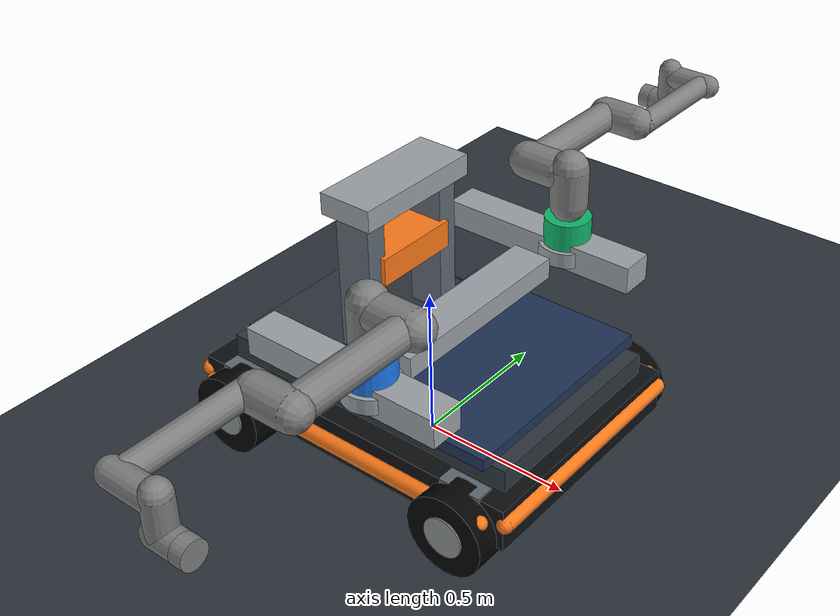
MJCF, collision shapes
<mujoco model="wheeled_dual_ur5e_v2">
  <compiler angle="radian"/>

  <option integrator="implicitfast"/>

  <size nkey="1"/>

  <visual>
    <global azimuth="125" elevation="-18"/>
    <headlight ambient="0.3 0.3 0.3" diffuse="0.6 0.6 0.6" specular="0 0 0"/>
    <map force="0.1" zfar="30"/>
    <rgba haze="0.15 0.25 0.35 1"/>
  </visual>

  <default>
    <joint limited="true"/>
    <geom contype="0" conaffinity="0" condim="1" solref="0.008"/>
    <general ctrllimited="true" biastype="affine" gainprm="400" biasprm="0 -400 -40"/>
    <default class="ur5e">
      <material shininess="0.25"/>
      <joint range="-6.28319 6.28319" armature="0.1"/>
      <site size="0.001 0.005 0.005" group="4" rgba="0.5 0.5 0.5 0.3"/>
      <general ctrlrange="-6.2831 6.2831" forcerange="-150 150" gainprm="2000" biasprm="0 -2000 -400"/>
      <default class="size3">
        <default class="size3_limited">
          <joint range="-3.1415 3.1415"/>
          <general ctrlrange="-3.1415 3.1415"/>
        </default>
      </default>
      <default class="size1">
        <general forcerange="-28 28" gainprm="500" biasprm="0 -500 -100"/>
      </default>
      <default class="visual">
        <geom type="mesh" group="2"/>
      </default>
      <default class="collision">
        <geom type="capsule" group="3"/>
        <default class="eef_collision">
          <geom type="cylinder"/>
        </default>
      </default>
    </default>
  </default>

  <asset>
    <texture type="skybox" colorspace="auto" builtin="gradient" rgb1="0.28 0.4 0.56" rgb2="0.02 0.03 0.05" width="512" height="3072"/>
    <texture type="2d" colorspace="auto" name="groundplane" builtin="checker" mark="edge" rgb1="0.22 0.25 0.28" rgb2="0.12 0.15 0.18" markrgb="0.75 0.75 0.75" width="300" height="300"/>
    <material name="groundplane" texture="groundplane" texuniform="true" texrepeat="6 6" reflectance="0.18"/>
    <material name="mat_base_dark" rgba="0.055 0.06 0.07 1"/>
    <material name="mat_base_panel" rgba="0.18 0.21 0.24 1"/>
    <material name="mat_base_blue" rgba="0.12 0.2 0.34 1"/>
    <material name="mat_rubber" rgba="0.015 0.015 0.015 1"/>
    <material name="mat_hub" rgba="0.55 0.57 0.58 1"/>
    <material name="mat_aluminum" rgba="0.62 0.64 0.66 1"/>
    <material name="mat_column" rgba="0.38 0.42 0.46 1"/>
    <material name="mat_accent" rgba="1 0.48 0.1 1"/>
    <material name="mat_left_arm" rgba="0.06 0.72 0.42 1"/>
    <material name="mat_left_arm_light" rgba="0.16 0.88 0.55 1"/>
    <material name="mat_right_arm" rgba="0.12 0.48 0.95 1"/>
    <material name="mat_right_arm_light" rgba="0.25 0.62 1 1"/>
    <material name="black" class="ur5e" rgba="0.033 0.033 0.033 1"/>
    <material name="jointgray" class="ur5e" rgba="0.278 0.278 0.278 1"/>
    <material name="linkgray" class="ur5e" rgba="0.82 0.82 0.82 1"/>
    <material name="urblue" class="ur5e" rgba="0.49 0.678 0.8 1"/>
    <mesh name="base_0" content_type="model/obj" file="mujoco_menager/mujoco_menagerie/universal_robots_ur5e/assets/base_0.obj"/>
    <mesh name="base_1" content_type="model/obj" file="mujoco_menager/mujoco_menagerie/universal_robots_ur5e/assets/base_1.obj"/>
    <mesh name="shoulder_0" content_type="model/obj" file="mujoco_menager/mujoco_menagerie/universal_robots_ur5e/assets/shoulder_0.obj"/>
    <mesh name="shoulder_1" content_type="model/obj" file="mujoco_menager/mujoco_menagerie/universal_robots_ur5e/assets/shoulder_1.obj"/>
    <mesh name="shoulder_2" content_type="model/obj" file="mujoco_menager/mujoco_menagerie/universal_robots_ur5e/assets/shoulder_2.obj"/>
    <mesh name="upperarm_0" content_type="model/obj" file="mujoco_menager/mujoco_menagerie/universal_robots_ur5e/assets/upperarm_0.obj"/>
    <mesh name="upperarm_1" content_type="model/obj" file="mujoco_menager/mujoco_menagerie/universal_robots_ur5e/assets/upperarm_1.obj"/>
    <mesh name="upperarm_2" content_type="model/obj" file="mujoco_menager/mujoco_menagerie/universal_robots_ur5e/assets/upperarm_2.obj"/>
    <mesh name="upperarm_3" content_type="model/obj" file="mujoco_menager/mujoco_menagerie/universal_robots_ur5e/assets/upperarm_3.obj"/>
    <mesh name="forearm_0" content_type="model/obj" file="mujoco_menager/mujoco_menagerie/universal_robots_ur5e/assets/forearm_0.obj"/>
    <mesh name="forearm_1" content_type="model/obj" file="mujoco_menager/mujoco_menagerie/universal_robots_ur5e/assets/forearm_1.obj"/>
    <mesh name="forearm_2" content_type="model/obj" file="mujoco_menager/mujoco_menagerie/universal_robots_ur5e/assets/forearm_2.obj"/>
    <mesh name="forearm_3" content_type="model/obj" file="mujoco_menager/mujoco_menagerie/universal_robots_ur5e/assets/forearm_3.obj"/>
    <mesh name="wrist1_0" content_type="model/obj" file="mujoco_menager/mujoco_menagerie/universal_robots_ur5e/assets/wrist1_0.obj"/>
    <mesh name="wrist1_1" content_type="model/obj" file="mujoco_menager/mujoco_menagerie/universal_robots_ur5e/assets/wrist1_1.obj"/>
    <mesh name="wrist1_2" content_type="model/obj" file="mujoco_menager/mujoco_menagerie/universal_robots_ur5e/assets/wrist1_2.obj"/>
    <mesh name="wrist2_0" content_type="model/obj" file="mujoco_menager/mujoco_menagerie/universal_robots_ur5e/assets/wrist2_0.obj"/>
    <mesh name="wrist2_1" content_type="model/obj" file="mujoco_menager/mujoco_menagerie/universal_robots_ur5e/assets/wrist2_1.obj"/>
    <mesh name="wrist2_2" content_type="model/obj" file="mujoco_menager/mujoco_menagerie/universal_robots_ur5e/assets/wrist2_2.obj"/>
    <mesh name="wrist3" content_type="model/obj" file="mujoco_menager/mujoco_menagerie/universal_robots_ur5e/assets/wrist3.obj"/>
  </asset>

  <worldbody>
    <geom name="floor" size="0 0 0.05" type="plane" contype="1" conaffinity="1" material="groundplane"/>
    <light pos="0 0 3.8" dir="0 0 -1" type="directional" diffuse="0.45 0.45 0.45" specular="0.1 0.1 0.1"/>
    <light pos="2 1.4 2.4" dir="-0.674882 -0.449921 -0.584898" diffuse="0.55 0.55 0.55"/>
    <body name="base_x_body">
      <inertial pos="0 0 0" mass="1" diaginertia="0.05 0.05 0.05"/>
      <joint name="base_x" pos="0 0 0" axis="1 0 0" type="slide" range="-3 3" damping="10"/>
      <body name="base_y_body">
        <inertial pos="0 0 0" mass="1" diaginertia="0.05 0.05 0.05"/>
        <joint name="base_y" pos="0 0 0" axis="0 1 0" type="slide" range="-3 3" damping="10"/>
        <body name="base_yaw_body">
          <inertial pos="0 0 0" mass="1" diaginertia="0.05 0.05 0.05"/>
          <joint name="base_yaw" pos="0 0 0" axis="0 0 1" range="-3.1416 3.1416" damping="5"/>
          <body name="mobile_base" pos="0 0 0.18">
            <inertial pos="0 0 0.02" mass="58" diaginertia="4 5 6"/>
            <geom size="0.58 0.4 0.07" type="box" mass="0" material="mat_base_dark"/>
            <geom size="0.52 0.34 0.035" pos="0.02 0 0.115" type="box" mass="0" material="mat_base_panel"/>
            <geom size="0.3 0.37 0.02" pos="0.19 0 0.165" type="box" mass="0" material="mat_base_blue"/>
            <geom size="0.24 0.3 0.02" pos="-0.24 0 0.158" type="box" mass="0" material="mat_base_panel"/>
            <geom size="0.025 0.39" pos="0.58 0 0.02" quat="0.707107 -0.707107 0 0" type="capsule" mass="0" material="mat_accent"/>
            <geom size="0.025 0.39" pos="-0.58 0 0.02" quat="0.707107 -0.707107 0 0" type="capsule" mass="0" material="mat_accent"/>
            <geom size="0.025 0.52" pos="0 0.43 0.02" quat="0.707107 0 -0.707107 0" type="capsule" mass="0" material="mat_accent"/>
            <geom size="0.025 0.52" pos="0 -0.43 0.02" quat="0.707107 0 -0.707107 0" type="capsule" mass="0" material="mat_accent"/>
            <geom size="0.06 0.035 0.26" pos="-0.12 0.16 0.4" type="box" mass="0" material="mat_column"/>
            <geom size="0.06 0.035 0.26" pos="-0.12 -0.16 0.4" type="box" mass="0" material="mat_column"/>
            <geom size="0.09 0.22 0.035" pos="-0.12 0 0.665" type="box" mass="0" material="mat_aluminum"/>
            <body name="front_left_wheel_module" pos="0.43 0.42 -0.05">
              <geom size="0.07 0.03 0.085" pos="0 -0.045 0.04" type="box" mass="0.8" material="mat_column"/>
              <geom size="0.13 0.055" quat="0.707105 0.707108 0 0" type="cylinder" mass="2.5" material="mat_rubber"/>
              <geom size="0.065 0.06" quat="0.707105 0.707108 0 0" type="cylinder" mass="0.5" material="mat_hub"/>
            </body>
            <body name="front_right_wheel_module" pos="0.43 -0.42 -0.05">
              <geom size="0.07 0.03 0.085" pos="0 0.045 0.04" type="box" mass="0.8" material="mat_column"/>
              <geom size="0.13 0.055" quat="0.707105 0.707108 0 0" type="cylinder" mass="2.5" material="mat_rubber"/>
              <geom size="0.065 0.06" quat="0.707105 0.707108 0 0" type="cylinder" mass="0.5" material="mat_hub"/>
            </body>
            <body name="rear_left_wheel_module" pos="-0.43 0.42 -0.05">
              <geom size="0.07 0.03 0.085" pos="0 -0.045 0.04" type="box" mass="0.8" material="mat_column"/>
              <geom size="0.13 0.055" quat="0.707105 0.707108 0 0" type="cylinder" mass="2.5" material="mat_rubber"/>
              <geom size="0.065 0.06" quat="0.707105 0.707108 0 0" type="cylinder" mass="0.5" material="mat_hub"/>
            </body>
            <body name="rear_right_wheel_module" pos="-0.43 -0.42 -0.05">
              <geom size="0.07 0.03 0.085" pos="0 0.045 0.04" type="box" mass="0.8" material="mat_column"/>
              <geom size="0.13 0.055" quat="0.707105 0.707108 0 0" type="cylinder" mass="2.5" material="mat_rubber"/>
              <geom size="0.065 0.06" quat="0.707105 0.707108 0 0" type="cylinder" mass="0.5" material="mat_hub"/>
            </body>
          </body>
          <body name="base_z_body">
            <inertial pos="0 0 0.55" mass="10" diaginertia="0.6 0.6 0.4"/>
            <joint name="base_z" pos="0 0 0" axis="0 0 1" type="slide" range="0 0.5" damping="10"/>
            <geom size="0.075 0.145 0.045" pos="-0.12 0 0.635" type="box" mass="0" material="mat_accent"/>
            <geom size="0.34 0.055 0.045" pos="0.1 0.46 0.52" type="box" mass="0" material="mat_aluminum"/>
            <geom size="0.34 0.055 0.045" pos="0.1 -0.46 0.52" type="box" mass="0" material="mat_aluminum"/>
            <geom size="0.065 0.33 0.035" pos="0.14 0 0.515" type="box" mass="0" material="mat_aluminum"/>
            <body name="left_shoulder_mount" pos="0.18 0.46 0.52">
              <inertial pos="0 0 0.035" mass="5" diaginertia="0.1 0.1 0.08"/>
              <geom size="0.09 0.025" type="cylinder" mass="0" material="mat_aluminum"/>
              <geom size="0.075 0.055" pos="0 0 0.06" type="cylinder" mass="0" material="mat_left_arm"/>
              <body name="left_ur5e_base" childclass="ur5e" pos="0 0 0.095" quat="-0.707107 0 0 -0.707107">
                <inertial pos="0 0 0" mass="4" diaginertia="0.00443333 0.00443333 0.0072"/>
                <geom class="visual" material="black" mesh="base_0"/>
                <geom class="visual" material="jointgray" mesh="base_1"/>
                <body name="left_shoulder_link" pos="0 0 0.163">
                  <inertial pos="0 0 0" mass="3.7" diaginertia="0.0102675 0.0102675 0.00666"/>
                  <joint name="left_shoulder_pan_joint" class="size3" pos="0 0 0" axis="0 0 1"/>
                  <geom class="visual" material="urblue" mesh="shoulder_0"/>
                  <geom class="visual" material="black" mesh="shoulder_1"/>
                  <geom class="visual" material="jointgray" mesh="shoulder_2"/>
                  <geom class="collision" size="0.06 0.06" pos="0 0 -0.04"/>
                  <body name="left_upper_arm_link" pos="0 0.138 0" quat="0.707107 0 0.707107 0">
                    <inertial pos="0 0 0.2125" mass="8.393" diaginertia="0.133886 0.133886 0.0151074"/>
                    <joint name="left_shoulder_lift_joint" class="size3" pos="0 0 0" axis="0 1 0"/>
                    <geom class="visual" material="linkgray" mesh="upperarm_0"/>
                    <geom class="visual" material="black" mesh="upperarm_1"/>
                    <geom class="visual" material="jointgray" mesh="upperarm_2"/>
                    <geom class="visual" material="urblue" mesh="upperarm_3"/>
                    <geom class="collision" size="0.06 0.06" pos="0 -0.04 0" quat="0.707107 0.707107 0 0"/>
                    <geom class="collision" size="0.05 0.2" pos="0 0 0.2"/>
                    <body name="left_forearm_link" pos="0 -0.131 0.425">
                      <inertial pos="0 0 0.196" mass="2.275" diaginertia="0.0311796 0.0311796 0.004095"/>
                      <joint name="left_elbow_joint" class="size3_limited" pos="0 0 0" axis="0 1 0"/>
                      <geom class="visual" material="urblue" mesh="forearm_0"/>
                      <geom class="visual" material="linkgray" mesh="forearm_1"/>
                      <geom class="visual" material="black" mesh="forearm_2"/>
                      <geom class="visual" material="jointgray" mesh="forearm_3"/>
                      <geom class="collision" size="0.055 0.06" pos="0 0.08 0" quat="0.707107 0.707107 0 0"/>
                      <geom class="collision" size="0.038 0.19" pos="0 0 0.2"/>
                      <body name="left_wrist_1_link" pos="0 0 0.392" quat="0.707107 0 0.707107 0">
                        <inertial pos="0 0.127 0" mass="1.219" diaginertia="0.0025599 0.0025599 0.0021942"/>
                        <joint name="left_wrist_1_joint" class="size1" pos="0 0 0" axis="0 1 0"/>
                        <geom class="visual" material="black" mesh="wrist1_0"/>
                        <geom class="visual" material="urblue" mesh="wrist1_1"/>
                        <geom class="visual" material="jointgray" mesh="wrist1_2"/>
                        <geom class="collision" size="0.04 0.07" pos="0 0.05 0" quat="0.707107 0.707107 0 0"/>
                        <body name="left_wrist_2_link" pos="0 0.127 0">
                          <inertial pos="0 0 0.1" mass="1.219" diaginertia="0.0025599 0.0025599 0.0021942"/>
                          <joint name="left_wrist_2_joint" class="size1" pos="0 0 0" axis="0 0 1"/>
                          <geom class="visual" material="black" mesh="wrist2_0"/>
                          <geom class="visual" material="urblue" mesh="wrist2_1"/>
                          <geom class="visual" material="jointgray" mesh="wrist2_2"/>
                          <geom class="collision" size="0.04 0.06" pos="0 0 0.04"/>
                          <geom class="collision" size="0.04 0.04" pos="0 0.02 0.1" quat="0.707107 0.707107 0 0"/>
                          <body name="left_wrist_3_link" pos="0 0 0.1">
                            <inertial pos="0 0.0771683 0" quat="0.707107 0 0 0.707107" mass="0.1889" diaginertia="0.000132134 9.90863e-05 9.90863e-05"/>
                            <joint name="left_wrist_3_joint" class="size1" pos="0 0 0" axis="0 1 0"/>
                            <geom class="visual" material="linkgray" mesh="wrist3"/>
                            <geom class="eef_collision" size="0.04 0.02" pos="0 0.08 0" quat="0.707107 0.707107 0 0"/>
                            <site name="left_ee_site" pos="0 0.1 0" quat="-0.707107 0.707107 0 0" size="0.022" rgba="0 1 0 1"/>
                          </body>
                        </body>
                      </body>
                    </body>
                  </body>
                </body>
              </body>
            </body>
            <body name="right_shoulder_mount" pos="0.18 -0.46 0.52">
              <inertial pos="0 0 0.035" mass="5" diaginertia="0.1 0.1 0.08"/>
              <geom size="0.09 0.025" type="cylinder" mass="0" material="mat_aluminum"/>
              <geom size="0.075 0.055" pos="0 0 0.06" type="cylinder" mass="0" material="mat_right_arm"/>
              <body name="right_ur5e_base" childclass="ur5e" pos="0 0 0.095" quat="0.707107 0 0 -0.707107">
                <inertial pos="0 0 0" mass="4" diaginertia="0.00443333 0.00443333 0.0072"/>
                <geom class="visual" material="black" mesh="base_0"/>
                <geom class="visual" material="jointgray" mesh="base_1"/>
                <body name="right_shoulder_link" pos="0 0 0.163">
                  <inertial pos="0 0 0" mass="3.7" diaginertia="0.0102675 0.0102675 0.00666"/>
                  <joint name="right_shoulder_pan_joint" class="size3" pos="0 0 0" axis="0 0 1"/>
                  <geom class="visual" material="urblue" mesh="shoulder_0"/>
                  <geom class="visual" material="black" mesh="shoulder_1"/>
                  <geom class="visual" material="jointgray" mesh="shoulder_2"/>
                  <geom class="collision" size="0.06 0.06" pos="0 0 -0.04"/>
                  <body name="right_upper_arm_link" pos="0 0.138 0" quat="0.707107 0 0.707107 0">
                    <inertial pos="0 0 0.2125" mass="8.393" diaginertia="0.133886 0.133886 0.0151074"/>
                    <joint name="right_shoulder_lift_joint" class="size3" pos="0 0 0" axis="0 1 0"/>
                    <geom class="visual" material="linkgray" mesh="upperarm_0"/>
                    <geom class="visual" material="black" mesh="upperarm_1"/>
                    <geom class="visual" material="jointgray" mesh="upperarm_2"/>
                    <geom class="visual" material="urblue" mesh="upperarm_3"/>
                    <geom class="collision" size="0.06 0.06" pos="0 -0.04 0" quat="0.707107 0.707107 0 0"/>
                    <geom class="collision" size="0.05 0.2" pos="0 0 0.2"/>
                    <body name="right_forearm_link" pos="0 -0.131 0.425">
                      <inertial pos="0 0 0.196" mass="2.275" diaginertia="0.0311796 0.0311796 0.004095"/>
                      <joint name="right_elbow_joint" class="size3_limited" pos="0 0 0" axis="0 1 0"/>
                      <geom class="visual" material="urblue" mesh="forearm_0"/>
                      <geom class="visual" material="linkgray" mesh="forearm_1"/>
                      <geom class="visual" material="black" mesh="forearm_2"/>
                      <geom class="visual" material="jointgray" mesh="forearm_3"/>
                      <geom class="collision" size="0.055 0.06" pos="0 0.08 0" quat="0.707107 0.707107 0 0"/>
                      <geom class="collision" size="0.038 0.19" pos="0 0 0.2"/>
                      <body name="right_wrist_1_link" pos="0 0 0.392" quat="0.707107 0 0.707107 0">
                        <inertial pos="0 0.127 0" mass="1.219" diaginertia="0.0025599 0.0025599 0.0021942"/>
                        <joint name="right_wrist_1_joint" class="size1" pos="0 0 0" axis="0 1 0"/>
                        <geom class="visual" material="black" mesh="wrist1_0"/>
                        <geom class="visual" material="urblue" mesh="wrist1_1"/>
                        <geom class="visual" material="jointgray" mesh="wrist1_2"/>
                        <geom class="collision" size="0.04 0.07" pos="0 0.05 0" quat="0.707107 0.707107 0 0"/>
                        <body name="right_wrist_2_link" pos="0 0.127 0">
                          <inertial pos="0 0 0.1" mass="1.219" diaginertia="0.0025599 0.0025599 0.0021942"/>
                          <joint name="right_wrist_2_joint" class="size1" pos="0 0 0" axis="0 0 1"/>
                          <geom class="visual" material="black" mesh="wrist2_0"/>
                          <geom class="visual" material="urblue" mesh="wrist2_1"/>
                          <geom class="visual" material="jointgray" mesh="wrist2_2"/>
                          <geom class="collision" size="0.04 0.06" pos="0 0 0.04"/>
                          <geom class="collision" size="0.04 0.04" pos="0 0.02 0.1" quat="0.707107 0.707107 0 0"/>
                          <body name="right_wrist_3_link" pos="0 0 0.1">
                            <inertial pos="0 0.0771683 0" quat="0.707107 0 0 0.707107" mass="0.1889" diaginertia="0.000132134 9.90863e-05 9.90863e-05"/>
                            <joint name="right_wrist_3_joint" class="size1" pos="0 0 0" axis="0 1 0"/>
                            <geom class="visual" material="linkgray" mesh="wrist3"/>
                            <geom class="eef_collision" size="0.04 0.02" pos="0 0.08 0" quat="0.707107 0.707107 0 0"/>
                            <site name="right_ee_site" pos="0 0.1 0" quat="-0.707107 0.707107 0 0" size="0.022" rgba="0 0.85 1 1"/>
                          </body>
                        </body>
                      </body>
                    </body>
                  </body>
                </body>
              </body>
            </body>
          </body>
        </body>
      </body>
    </body>
  </worldbody>

  <actuator>
    <general name="act_base_x" joint="base_x" ctrlrange="-3 3" gainprm="2000" biasprm="0 -2000 -200"/>
    <general name="act_base_y" joint="base_y" ctrlrange="-3 3" gainprm="2000" biasprm="0 -2000 -200"/>
    <general name="act_base_z" joint="base_z" ctrlrange="0 0.5" gainprm="35000" biasprm="0 -35000 -800"/>
    <general name="act_base_yaw" joint="base_yaw" ctrlrange="-3.1416 3.1416" gainprm="2000" biasprm="0 -2000 -200"/>
    <general name="act_left_shoulder_pan" joint="left_shoulder_pan_joint" ctrlrange="-6.28 6.28" gainprm="2600" biasprm="0 -2600 -190"/>
    <general name="act_left_shoulder_lift" joint="left_shoulder_lift_joint" ctrlrange="-6.28 6.28" gainprm="2600" biasprm="0 -2600 -190"/>
    <general name="act_left_elbow" joint="left_elbow_joint" ctrlrange="-3.14 3.14" gainprm="2200" biasprm="0 -2200 -160"/>
    <general name="act_left_wrist_1" joint="left_wrist_1_joint" ctrlrange="-6.28 6.28" gainprm="600" biasprm="0 -600 -60"/>
    <general name="act_left_wrist_2" joint="left_wrist_2_joint" ctrlrange="-6.28 6.28" gainprm="600" biasprm="0 -600 -60"/>
    <general name="act_left_wrist_3" joint="left_wrist_3_joint" ctrlrange="-6.28 6.28" gainprm="600" biasprm="0 -600 -60"/>
    <general name="act_right_shoulder_pan" joint="right_shoulder_pan_joint" ctrlrange="-6.28 6.28" gainprm="2600" biasprm="0 -2600 -190"/>
    <general name="act_right_shoulder_lift" joint="right_shoulder_lift_joint" ctrlrange="-6.28 6.28" gainprm="2600" biasprm="0 -2600 -190"/>
    <general name="act_right_elbow" joint="right_elbow_joint" ctrlrange="-3.14 3.14" gainprm="2200" biasprm="0 -2200 -160"/>
    <general name="act_right_wrist_1" joint="right_wrist_1_joint" ctrlrange="-6.28 6.28" gainprm="600" biasprm="0 -600 -60"/>
    <general name="act_right_wrist_2" joint="right_wrist_2_joint" ctrlrange="-6.28 6.28" gainprm="600" biasprm="0 -600 -60"/>
    <general name="act_right_wrist_3" joint="right_wrist_3_joint" ctrlrange="-6.28 6.28" gainprm="600" biasprm="0 -600 -60"/>
  </actuator>

  <keyframe>
    <key name="home" qpos="0 0 0 0.2 0 -1.2 1.6 -0.4 -1.5708 0 0 -1.2 1.6 -0.4 -1.5708 0" ctrl="0 0 0.2 0 0 -1.2 1.6 -0.4 -1.5708 0 0 -1.2 1.6 -0.4 -1.5708 0"/>
  </keyframe>
</mujoco>
